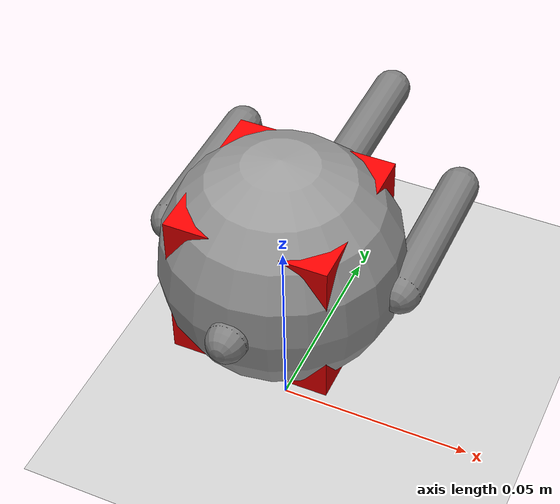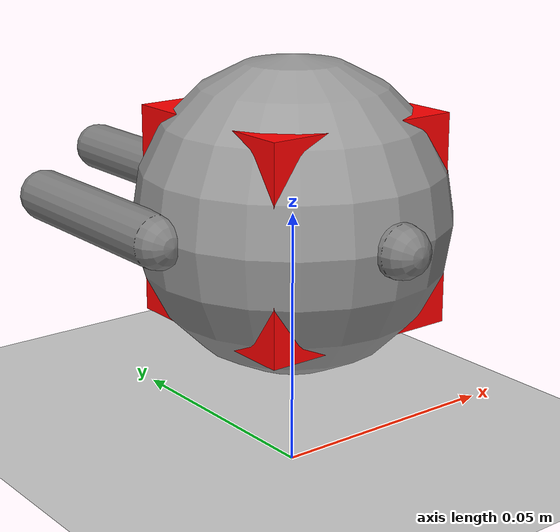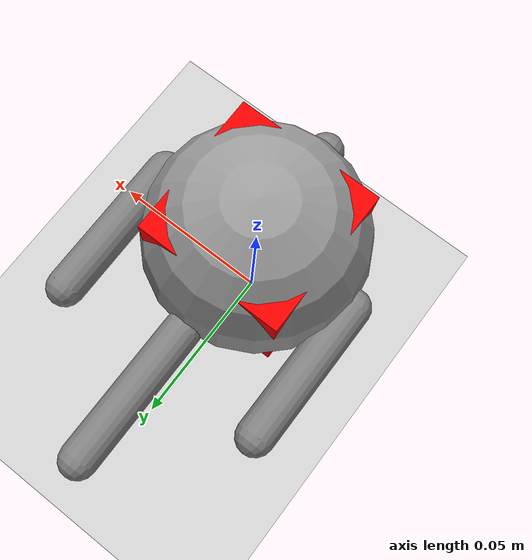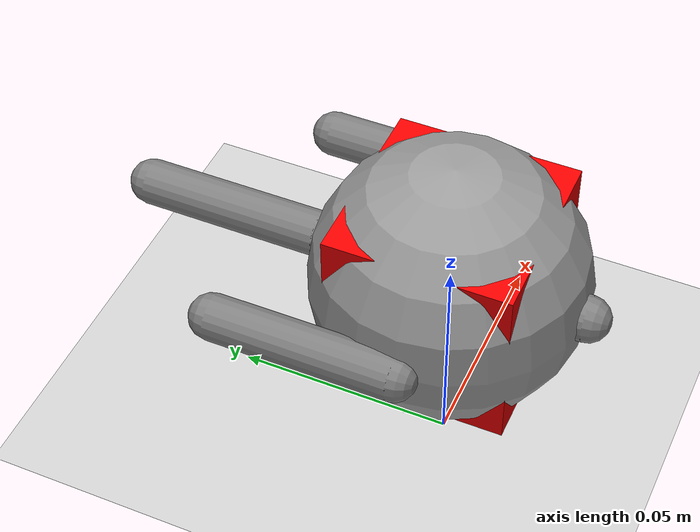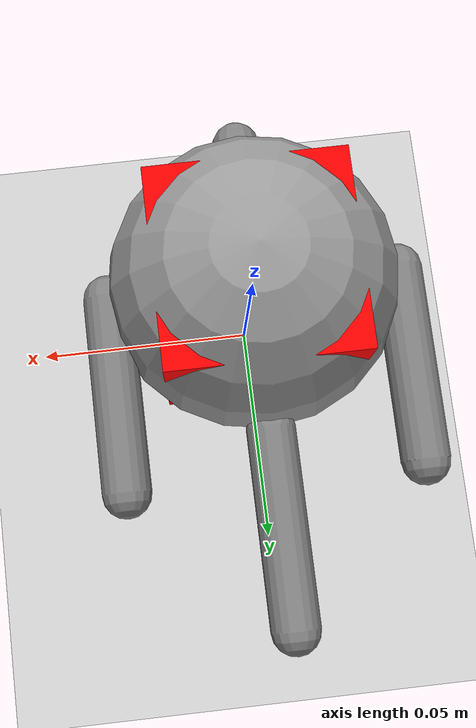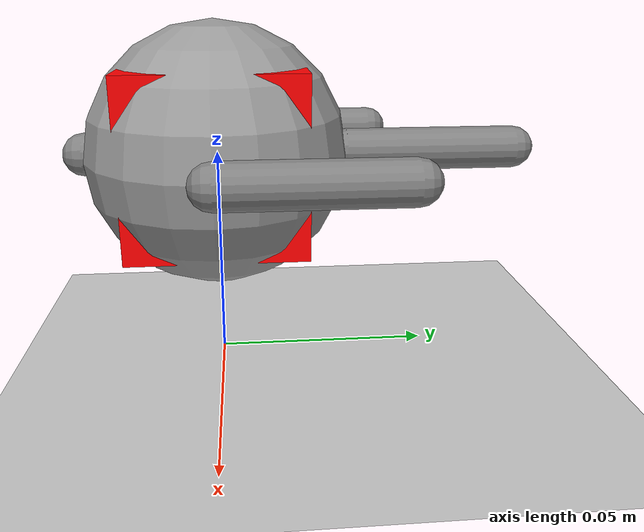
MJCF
<mujoco model="allegro_hand_demo">
  <compiler angle="radian" coordinate="local"/>
  <option timestep="0.002"/>

  <worldbody>
    <light pos="0 0 1"/>
    <geom name="table" type="plane" size="1 1 0.1" rgba="0.8 0.8 0.8 1"/>

    <!-- Küçük küp (kavranacak nesne) -->
    <body name="object" pos="0 0 0.05">
      <geom type="box" size="0.02 0.02 0.02" rgba="1 0 0 1" mass="0.02"/>
    </body>

    <!-- Basit 4 parmaklı el -->
    <body name="hand" pos="0 0 0.05">
      <geom type="sphere" size="0.03" rgba="0.6 0.6 0.6 1"/>

      <body name="finger1" pos="0.03 0 0">
        <joint name="f1" type="hinge" axis="0 0 1" range="0 1.0"/>
        <geom type="capsule" fromto="0 0 0 0 0.04 0" size="0.005"/>
      </body>

      <body name="finger2" pos="0 0.03 0">
        <joint name="f2" type="hinge" axis="0 0 1" range="0 1.0"/>
        <geom type="capsule" fromto="0 0 0 0 0.04 0" size="0.005"/>
      </body>

      <body name="finger3" pos="-0.03 0 0">
        <joint name="f3" type="hinge" axis="0 0 1" range="0 1.0"/>
        <geom type="capsule" fromto="0 0 0 0 0.04 0" size="0.005"/>
      </body>

      <body name="finger4" pos="0 -0.03 0">
        <joint name="f4" type="hinge" axis="0 0 1" range="0 1.0"/>
        <geom type="capsule" fromto="0 0 0 0 0.04 0" size="0.005"/>
      </body>
    </body>
  </worldbody>

  <actuator>
    <position name="f1_act" joint="f1" kp="10"/>
    <position name="f2_act" joint="f2" kp="10"/>
    <position name="f3_act" joint="f3" kp="10"/>
    <position name="f4_act" joint="f4" kp="10"/>
  </actuator>
</mujoco>
